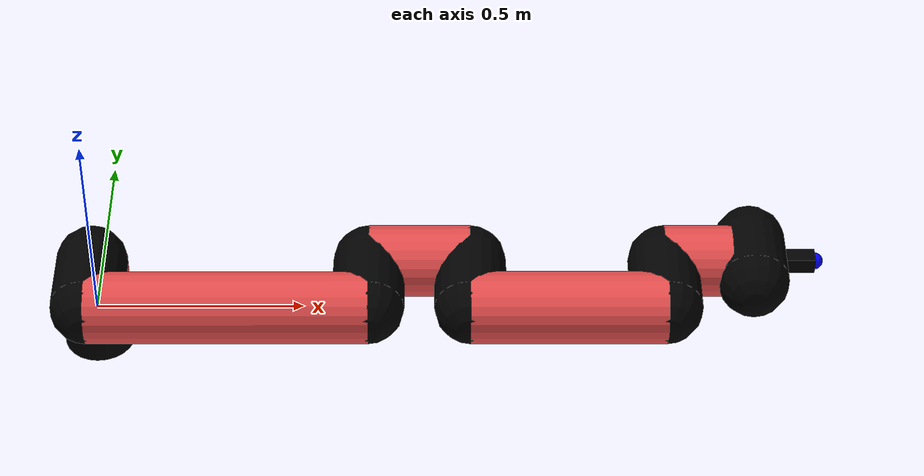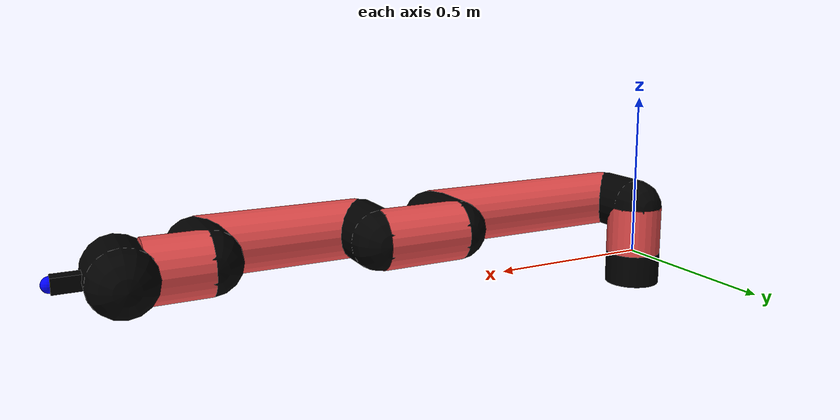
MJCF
<mujoco model="manipulator">
		<compiler angle="degree" coordinate="local" inertiafromgeom="auto" meshdir="meshes/"/>
		<option gravity="0 0 0" integrator="RK4" iterations="30" timestep="0.01"/>

		<default>
		<joint armature="1" limited="true" stiffness="10" damping="15" frictionloss="5.0"/>
		<geom conaffinity="1" condim="3" contype="1" friction=".5 .1 .1" margin="0.002"/>
		<motor ctrllimited="true"/>
		<position ctrllimited="true"/>
		</default>

		<asset>
		<texture builtin="gradient" height="100" rgb1="1.0 1.0 1.0" rgb2="1.0 1.0 1.0" type="skybox" width="100"/>
		<texture builtin="flat" height="32" name="arm_tex" rgb1="0.9 0.3 0.3" type="2d" width="32"/>
		<texture builtin="flat" height="32" name="gripper_tex" rgb1="0.0 0.0 0.0" type="cube" width="32"/>

		<material name="arm_mat" shininess="0.1" specular="0.1" texture="arm_tex"/>
		<material name="gripper_mat" shininess="1" specular="1" texture="gripper_tex"/>
		</asset>

		<worldbody>
		<light cutoff="45" diffuse=".8 .8 .8" dir="0 0.16 -1" directional="false" name="light" pos="0 -2.0 8.0" specular="0.3 0.3 0.3"/>

		<body name="base_link" pos="0 0 -0.1">
		<geom fromto="0 0 0 0 0 0.1" material="arm_mat" name="base_link" rgba="0.0 0.0 0.0 1" size="0.085" type="cylinder"/>
		</body>

		<body name="l1" pos="0 0 0">
<geom fromto="0 0 0 0 0 0.15" material="arm_mat" name="l1" rgba="0.9 0.3 0.3 1" size="0.085" type="cylinder"/>
<geom fromto="0 0 0.15 0 -0.16 0.15" material="arm_mat" name="l1_ex" rgba="0.0 0.0 0.0 1" size="0.085" type="capsule"/>
<joint axis="0 0 1" name="j1" pos="0 0 0" range="-90 90" damping="18.11" frictionloss="14.93"/>

<body name="l2" pos="0 -0.16 0.15">
<geom fromto="0 0 0 0.66 0 0" material="arm_mat" name="l2" rgba="0.9 0.3 0.3 1" size="0.085" type="cylinder"/>
<geom fromto="0.66 0 0 0.66 0.16 0" material="arm_mat" name="l2_ex" rgba="0.0 0.0 0.0 1" size="0.085" type="capsule"/>
<joint axis="0.0 1.0 0.0" name="j2" pos="0 0 0" range="-90 60" damping="33.61" frictionloss="14.09"/>

<body name="l3" pos="0.66 0.16 0">
<geom fromto="0 0 0 0.24 0 0" material="arm_mat" name="l3" rgba="0.9 0.3 0.3 1" size="0.085" type="cylinder"/>
<geom fromto="0.24 0 0 0.24 -0.16 0" material="arm_mat" name="l3_ex" rgba="0.0 0.0 0.0 1" size="0.085" type="capsule"/>
<joint axis="0.0 1.0 0.0" name="j3" pos="0 0 0" range="-30 60" damping="22.48" frictionloss="14.41"/>

<body name="l4" pos="0.24 -0.16 0">
<geom fromto="0 0 0 0.46 0 0" material="arm_mat" name="l4" rgba="0.9 0.3 0.3 1" size="0.085" type="cylinder"/>
<geom fromto="0.46 0 0 0.46 0.16 0" material="arm_mat" name="l4_ex" rgba="0.0 0.0 0.0 1" size="0.085" type="capsule"/>
<joint axis="0.0 1.0 0.0" name="j4" pos="0 0 0" range="-30 60" damping="43.94" frictionloss="5.62"/>

<body name="l5" pos="0.46 0.16 0">
<geom fromto="0 0 0 0.16 0 0" material="arm_mat" name="l5" rgba="0.9 0.3 0.3 1" size="0.085" type="cylinder"/>
<joint axis="0.0 1.0 0.0" name="j5" pos="0 0 0" range="-30 60" damping="13.41" frictionloss="4.88"/>

<body name="gripper" pos="0.16 0 0">
<geom fromto="0.05 -0.07 0 0.05 0.07 0" material="gripper_mat" name="gripper" rgba="0.0 0.0 0.0 1" size="0.085" type="capsule"/><joint axis="1 0 0" name="j6" pos="0 0 0" range="-90 90" damping="15" frictionloss="5.0"/><body name="finger" pos="0.1 0 0">
<geom fromto="0 0.0 0 0.1 0.0 0" material="gripper_mat" name="finger" rgba="0.0 0.0 0.0 1" size="0.020 0.06 0.06" type="box"/>
</body>
<site name="current" pos="0.2 0. 0.0" rgba="0. 0. 1.0 1" size="0.02" type="sphere"/>
</body>
</body>
</body>
</body>
</body>
</body>
</worldbody>
<actuator>
<motor ctrllimited="true" ctrlrange="-1.0 1.0" joint="j1" gear="52.44"/>
<motor ctrllimited="true" ctrlrange="-1.0 1.0" joint="j2" gear="67.34"/>
<motor ctrllimited="true" ctrlrange="-1.0 1.0" joint="j3" gear="89.98"/>
<motor ctrllimited="true" ctrlrange="-1.0 1.0" joint="j4" gear="84.91"/>
<motor ctrllimited="true" ctrlrange="-1.0 1.0" joint="j5" gear="115.15"/>
<motor ctrllimited="true" ctrlrange="-1.0 1.0" joint="j6" gear="80"/>
</actuator>
</mujoco>
